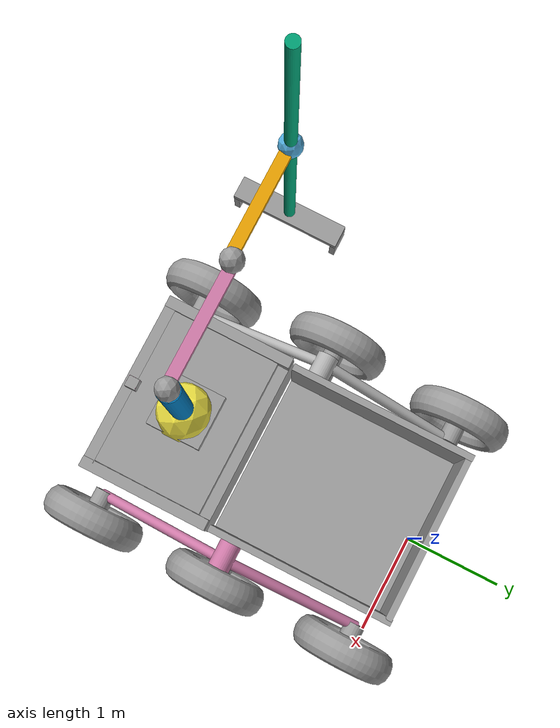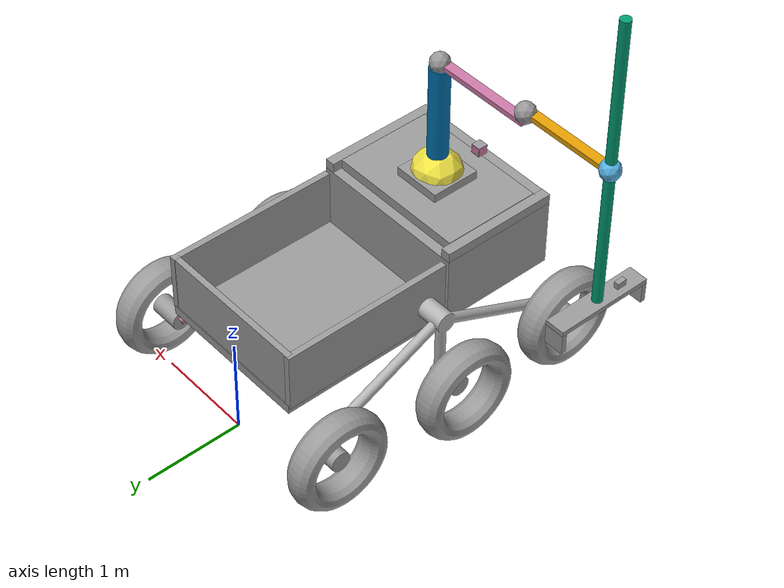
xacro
<?xml version="1.0"?>
<robot xmlns:xacro="http://ros.org/wiki/xacro" name="rover">

  <!-- Includes de componentes -->

  <xacro:include filename="$(find rover_description)/urdf/base/robot_base.urdf.xacro"/>
  <xacro:include filename="$(find rover_description)/urdf/wheels/rover_wheel.urdf.xacro"/>
  <xacro:include filename="$(find rover_description)/urdf/arm/scara.urdf.xacro"/>
  <xacro:include filename="$(find rover_description)/urdf/arm/gripper.urdf.xacro"/>
  <xacro:include filename="$(find rover_description)/urdf/sensors/camera.urdf.xacro"/>
  <xacro:include filename="$(find rover_description)/urdf/sensors/imu_sensor.urdf.xacro"/>

  <!-- Propiedades comunes -->
  <xacro:property name="PI" value="3.1415926535897931"/>

  <!-- Argumentos -->
  <xacro:arg name="robot_ns" default=""/>
  <xacro:arg name="prefix" default=""/>
  <xacro:arg name="config_controllers" default="$(find rover_description)/config/rover_controllers.yaml"/>
  <xacro:arg name="update_rate" default="100"/>

  <!-- Base del robot (debe contener base_footprint -> base_link) -->
  <xacro:robot_base prefix="$(arg prefix)"/>

  <xacro:rover_wheel prefix="$(arg prefix)"/>

  <xacro:arm_scara prefix="$(arg prefix)"/>

  <xacro:arm_gripper prefix="$(arg prefix)"/>

  <xacro:rover_cameras prefix="$(arg prefix)"/>

  <xacro:rover_imu_sensor prefix="$(arg prefix)"/>

  <!-- Gazebo ROS control plugins -->
  <xacro:include filename="$(find rover_description)/urdf/ros2_control.urdf.xacro"/>
  <xacro:arg name="config_controllers" default="$(find rover_description)/config/rover_controllers.yaml"/>
  <xacro:arg name="update_rate" default="20"/>
  <xacro:ros2_control/>

  <!-- Control ROS2 con plugins Gazebo -->

</robot>

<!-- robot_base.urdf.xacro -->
<!-- created with Phobos 1.0.1 "Capricious Choutengan" -->
<robot xmlns:xacro="http://wiki.ros.org/xacro">

    <xacro:macro name="robot_base" params="prefix">

        <xacro:property name="PI" value="3.1415926535897931"/>

        <!-- base_footprint is the root link -->
        <link name="base_footprint">
            <origin rpy="0.00000 0.00000 0.00000" xyz="0 0 0"/>
        </link>

        <link name="base_link">

            <collision name="center_collision">
                <origin rpy="0.00000 0.00000 0.00000" xyz="0.00036 -0.48747 0.03518"/>
                <geometry>
                <box size="1.66000 1.20000 0.69949"/>
                </geometry>
            </collision>

            <inertial>
                <mass value="20.00000"/>
                <inertia
                ixx="5.38119" ixy="0.00000" ixz="-0.00000"
                iyy="3.21104" iyz="-0.00000"
                izz="6.96127"/>
            </inertial>

            <visual name="center">
                <origin rpy="0.00000 0.00000 0.00000" xyz="0.00036 -0.48747 0.03518"/>
                <geometry>
                    <box size="1.66 1.2 0.699491"/>
                </geometry>
                <material name="gray">
                    <color rgba="0.6 0.6 0.6 1.0"/>
                </material>
            </visual>
        </link>

        <joint name="Center_joint" type="fixed">
            <origin rpy="0 0 0" xyz="0.00245 -1.84494 1.1379"/>
            <parent link="base_footprint"/>
            <child link="base_link"/>
        </joint>

        <link name="base_arm_link">
            <collision name="base_arm_collision">
                <origin rpy="0.00000 0.00000 0.00000" xyz="0.00000 0 0.00000"/>
                <geometry>
                <box size="0.50000 0.50000 0.10000"/>
                </geometry>
            </collision>

            <inertial>
                <inertia ixx="0.10833" ixy="0.00000" ixz="0.00000" iyy="0.10833" iyz="0.00000" izz="0.20833"/>
                <origin rpy="0.00000 0.00000 0.00000" xyz="0.00000 0 0.00000"/>
                <mass value="5.00000"/>
            </inertial>
            <visual name="base_arm">
                <origin rpy="0.00000 0.00000 0.00000" xyz="0.00000 0 0.00000"/>
                <geometry>
                    <box size="0.50000 0.50000 0.10000"/>
                </geometry>
                <material name="gray">
                    <color rgba="0.6 0.6 0.6 1.0"/>
                </material>
            </visual>
        </link>

        <joint name="base_arm_link_joint" type="fixed">
            <origin rpy="0.00000 0.00000 1.57080" xyz="-0.00036 -0.48747 0.52328"/>
            <parent link="base_link"/>
            <child link="base_arm_link"/>
        </joint>

        <link name="box_base_link">
            <collision name="base_car_collision">
                <origin rpy="0 0 0" xyz="0 0 0"/>
                <geometry>
                <box size="1.75000 1.60000 0.09330"/>
                </geometry>
            </collision>

            <inertial>
                <mass value="20.00000"/>
                <inertia
                ixx="5.38119" ixy="0.00000" ixz="-0.00000"
                iyy="3.21104" iyz="-0.00000"
                izz="6.96127"/>
            </inertial>

            <visual name="base_car">
                <origin rpy="0 0 0" xyz="0 0 0"/>
                <geometry>
                    <box size="1.75000 1.60000 0.09330"/>
                </geometry>
                <material name="gray">
                    <color rgba="0.6 0.6 0.6 1.0"/>
                </material>
            </visual>

        </link>

        <joint name="box_base_link_joint" type="fixed">
            <origin rpy="0 0 1.57080" xyz="0.00582 1.00896 -0.26423"/>
            <parent link="base_link"/>
            <child link="box_base_link"/>
        </joint>

        <link name="left_arm_link">
            <collision name="base_car_collision">
                <origin rpy="0 0 0" xyz="0 0 0"/>
                <geometry>
                <mesh filename="package://rover_description/meshes/dae/Cube.018.dae" scale="0.82756 0.05994 0.30311"/>
                </geometry>
            </collision>

            <inertial>
                <mass value="20.00000"/>
                <inertia
                ixx="0.23899" ixy="0.00049" ixz="0.00162"
                iyy="1.25923" iyz="-0.02509"
                izz="1.06138"/>
            </inertial>

            <visual name="left_arm">
                <origin rpy="0 0 0" xyz="0 0 0"/>
                <material name="Material"/>
                <geometry>
                    <mesh filename="package://rover_description/meshes/dae/Cube.018.dae" scale="0.82756 0.05994 0.30311"/>
                </geometry>
            </visual>

        </link>

        <joint name="left_arm_link_joint" type="fixed">
            <origin rpy="0.00000 0.00000 0" xyz="0.97102 0.35887 -0.24256"/>
            <parent link="base_link"/>
            <child link="left_arm_link"/>
        </joint>

        <link name="right_arm_link">
            <collision name="base_car_collision">
                <origin rpy="0 0 0" xyz="0 0 0"/>
                <geometry>
                <mesh filename="package://rover_description/meshes/dae/Cube.015.dae" scale="0.82756 0.05994 0.30311"/>
                </geometry>
            </collision>

            <inertial>
                <mass value="20.00000"/>
                <inertia
                ixx="0.23899" ixy="0.00049" ixz="0.00162"
                iyy="1.25923" iyz="-0.02509"
                izz="1.06138"/>
            </inertial>

            <visual name="right_arm">
                <material name="Material"/>
                <geometry>
                    <mesh filename="package://rover_description/meshes/dae/Cube.015.dae" scale="0.82756 0.05994 0.30311"/>
                </geometry>
            </visual>

        </link>

        <joint name="right_arm_link_joint" type="fixed">
            <origin rpy="0.00000 0.00000 0" xyz="-0.97592 0.35887 -0.24255"/>
            <parent link="base_link"/>
            <child link="right_arm_link"/>
        </joint>

        <xacro:macro name="box_wall_link" params="name size_x size_y size_z mass">

            <link name="${name}_link">
                <visual>
                    <origin rpy="0 0 0" xyz="0 0 0"/>
                    <geometry>
                        <box size="${size_x} ${size_y} ${size_z}"/>
                    </geometry>
                    <material name="gray">
                        <color rgba="0.6 0.6 0.6 1.0"/>
                    </material>
                </visual>

                <collision>
                    <origin rpy="0 0 0" xyz="0 0 0"/>
                    <geometry>
                        <box size="${size_x} ${size_y} ${size_z}"/>
                    </geometry>
                </collision>

                <inertial>
                    <mass value="${mass}"/>
                    <origin xyz="0 0 0" rpy="0 0 0"/>
                    <inertia
                        ixx="${(mass*(size_y*size_y+size_z*size_z))/12}" ixy="0.0"  ixz="0.0"
                        iyy="${(mass*(size_x*size_x+size_z*size_z))/12}" iyz="0.0"
                        izz="${(mass*(size_x*size_x+size_y*size_y))/12}"/>
                </inertial>
            </link>
        </xacro:macro>

        <xacro:macro name="box_wall_link_joint" params="name xyz rpy parent_link">
        <joint name="${name}_link_joint" type="fixed">
            <origin rpy="${rpy}" xyz="${xyz}"/>
            <parent link="${parent_link}"/>
            <child link="${name}_link"/>
        </joint>
        </xacro:macro>

        <xacro:box_wall_link name="left_wall" size_x="0.06207" size_y="1.750000" size_z="0.60000" mass="20.00000"/>
        <xacro:box_wall_link_joint name="left_wall" xyz="0.78876 1.00572 0.06207" rpy="0 0 0" parent_link="base_link"/>

        <xacro:box_wall_link name="right_wall" size_x="0.06207" size_y="1.750000" size_z="0.60000" mass="20.00000"/>
        <xacro:box_wall_link_joint name="right_wall" xyz="-0.78413 1.00572 0.06207" rpy="0 0 0" parent_link="base_link"/>

        <xacro:box_wall_link name="back_wall" size_x="1.56700" size_y="0.06207" size_z="0.60000" mass="20.00000"/>
        <xacro:box_wall_link_joint name="back_wall" xyz="-0.00245 1.84494 0.06207" rpy="0 0 0" parent_link="base_link"/>

        <xacro:box_wall_link name="right_cube_head" size_x="0.1" size_y="1.2" size_z="0.1" mass="5.0"/>
        <xacro:box_wall_link_joint name="right_cube_head" xyz="-0.77909 -0.48947 0.43260" rpy="0.00000 0.00000 0.00000" parent_link="base_link"/>

        <xacro:box_wall_link name="front_cube_head" size_x="1.5" size_y="0.1" size_z="0.1" mass="5.0"/>
        <xacro:box_wall_link_joint name="front_cube_head" xyz="0.00594 -1.03621 0.43260" rpy="0.00000 0.00000 0.00000" parent_link="base_link"/>

        <xacro:box_wall_link name="left_cube_head" size_x="0.1" size_y="1.2" size_z="0.1" mass="5.0"/>
        <xacro:box_wall_link_joint name="left_cube_head" xyz="0.77994 -0.48947 0.43260" rpy="0.00000 0.00000 0.00000" parent_link="base_link"/>

        <xacro:box_wall_link name="top_head" size_x="1.45" size_y="1" size_z="0.1" mass="5.0"/>
        <xacro:box_wall_link_joint name="top_head" xyz="0.00036 -0.48747 0.43468" rpy="0.00000 0.00000 0.00000" parent_link="base_link"/>

        <xacro:macro name="cylinder_link" params="name ">

            <link name="${name}_link">
                <visual name="${name}">
                    <origin rpy="1.57080 0.00000 -1.57080" xyz="-0.00000 0.00000 -0.00000"/>
                    <geometry>
                        <cylinder radius="0.1" length="0.3"/>
                    </geometry>
                    <material name="gray">
                        <color rgba="0.6 0.6 0.6 1.0"/>
                    </material>
                </visual>

                <collision>
                    <origin rpy="1.57080 0.00000 -1.57080" xyz="-0.00000 0.00000 -0.00000"/>
                    <geometry>
                        <cylinder radius="0.1" length="0.3"/>
                    </geometry>
                </collision>

                <inertial>
                    <mass value="5"/>
                    <origin xyz="0 0 0" rpy="0 0 0"/>
                    <inertia ixx="0.88021" ixy="0.00000" ixz="0.00000" iyy="0.42083" iyz="0.00000" izz="1.29271"/>
                    <origin rpy="0.00000 0.00000 0.00000" xyz="0 0 0"/>
                    <mass value="5.00000"/>
                </inertial>
            </link>
        </xacro:macro>

        <xacro:macro name="cylinder_link_joint" params="name xyz rpy parent_link">
        <joint name="${name}_link_joint" type="fixed">
            <origin rpy="${rpy}" xyz="${xyz}"/>
            <parent link="${parent_link}"/>
            <child link="${name}_link"/>
        </joint>
        </xacro:macro>

        <xacro:cylinder_link name="front_left_cylinder"/>
        <xacro:cylinder_link_joint name="front_left_cylinder" xyz="1.10695 -0.98106 -0.64880" rpy="0.00000 -0.00000 0.00000" parent_link="base_link"/>

        <xacro:cylinder_link name="left_cylinder"/>
        <xacro:cylinder_link_joint name="left_cylinder" xyz="1.12188 0.34836 -0.64379" rpy="0.00000 -0.00000 0.00000" parent_link="base_link"/>

        <xacro:cylinder_link name="back_left_cylinder"/>
        <xacro:cylinder_link_joint name="back_left_cylinder" xyz="1.12188 1.71195 -0.64379" rpy="0.00000 -0.00000 0.00000" parent_link="base_link"/>

        <xacro:cylinder_link name="front_right_cylinder"/>
        <xacro:cylinder_link_joint name="front_right_cylinder" xyz="-1.11185 -0.98720 -0.64880" rpy="0.00000 -0.00000 0.00000" parent_link="base_link"/>

        <xacro:cylinder_link name="right_cylinder"/>
        <xacro:cylinder_link_joint name="right_cylinder" xyz="-1.12678 0.34836 -0.64379" rpy="0.00000 -0.00000 0.00000" parent_link="base_link"/>

        <xacro:cylinder_link name="back_right_cylinder"/>
        <xacro:cylinder_link_joint name="back_right_cylinder" xyz="-1.12678 1.71195 -0.64379" rpy="0.00000 -0.00000 0.00000" parent_link="base_link"/>

    </xacro:macro>

</robot>

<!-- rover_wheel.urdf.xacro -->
<robot xmlns:xacro="http://wiki.ros.org/xacro">

  <xacro:property name="PI" value="3.1415926535897931"/>

  <!-- Macro para una rueda -->
  <xacro:macro name="wheel_link" params="name">
    <link name="${name}_link">
      <visual>
        <origin xyz="0 0 0" rpy="0 1.5708 0"/>
        <geometry>
          <mesh filename="package://rover_description/meshes/dae/Torus.002.dae" scale="0.4 0.4 0.6"/>
        </geometry>
        <material name="gray">
          <color rgba="0.6 0.6 0.6 1.0"/>
        </material>
      </visual>
      <collision>
        <origin xyz="0 0 0" rpy="0 1.5708 0"/>
        <geometry>
          <mesh filename="package://rover_description/meshes/dae/Torus.002.dae" scale="0.4 0.4 0.6"/>
        </geometry>
        <surface>
        <friction>
          <ode>
            <mu>1.000000</mu>
            <mu2>1.000000</mu2>
            <fdir1>0.000000 0.000000 1.000000</fdir1>
            <slip1>0.500000</slip1>
            <slip2>0.500000</slip2>
          </ode>
        </friction>
      </surface>

      </collision>
      <inertial>
        <mass value="5"/>
        <origin xyz="0 0 0" rpy="0 0 0"/>
        <inertia ixx="0.31539" ixy="0.0" ixz="0.0"
                 iyy="0.58648" iyz="0.0"
                 izz="0.31539"/>
      </inertial>
    </link>
  </xacro:macro>

  <!-- Macro para el joint de una rueda -->
  <xacro:macro name="wheel_link_joint" params="name xyz rpy parent_link">
    <joint name="${name}_joint" type="continuous">
      <origin xyz="${xyz}" rpy="${rpy}"/>
      <limit effort="5000" velocity="100"/>
      <dynamics damping="0.05" friction="0.1"/>
      <parent link="${parent_link}"/>
      <child link="${name}_link"/>
    </joint>
  </xacro:macro>

  <xacro:macro name="wheel_transmission" params="prefix">
    <transmission name="${prefix}_wheel_joint_trans">
      <type>transmission_interface/SimpleTransmission</type>
      <joint name="${prefix}_wheel_joint">
        <hardwareInterface>hardware_interface/VelocityJointInterface</hardwareInterface>
      </joint>
      <actuator name="${prefix}_wheel_joint_motor">
        <mechanicalReduction>1</mechanicalReduction>
      </actuator>
    </transmission>
  </xacro:macro>

  <xacro:macro name="wheel_gazebo" params="prefix">
    <gazebo reference="${prefix}_wheel_link">
      <mu1>5</mu1>
      <mu2>5</mu2>
    </gazebo>
  </xacro:macro>

  <!-- Macro principal para añadir todas las ruedas -->
  <xacro:macro name="rover_wheel" params="prefix">

    <!-- Ruedas delanteras -->
    <xacro:wheel_link name="${prefix}left_front_wheel"/>
    <xacro:wheel_link_joint name="${prefix}left_front_wheel" xyz="1.23688 -0.96147 -0.64379" rpy="0.00000 -0.00000 0.00000" parent_link="base_link"/>
    <xacro:wheel_transmission prefix="${prefix}left_front"/>
    <xacro:wheel_gazebo prefix="${prefix}left_front"/>

    <xacro:wheel_link name="${prefix}right_front_wheel"/>
    <xacro:wheel_link_joint name="${prefix}right_front_wheel" xyz="-1.23028 -0.96147 -0.64379" rpy="0.00000 -0.00000 ${PI}" parent_link="base_link"/>
    <xacro:wheel_transmission prefix="${prefix}right_front"/>
    <xacro:wheel_gazebo prefix="${prefix}right_front"/>

    <!-- Ruedas del medio -->
    <xacro:wheel_link name="${prefix}left_wheel"/>
    <xacro:wheel_link_joint name="${prefix}left_wheel" xyz="1.23688 0.34836 -0.64379" rpy="0.00000 -0.00000 0.00000" parent_link="base_link"/>
    <xacro:wheel_transmission prefix="${prefix}left"/>
    <xacro:wheel_gazebo prefix="${prefix}left"/>

    <xacro:wheel_link name="${prefix}right_wheel"/>
    <xacro:wheel_link_joint name="${prefix}right_wheel" xyz="-1.32480 0.34836 -0.64379" rpy="0.00000 -0.00000 ${PI}" parent_link="base_link"/>
    <xacro:wheel_transmission prefix="${prefix}right"/>
    <xacro:wheel_gazebo prefix="${prefix}right"/>

    <!-- Ruedas traseras -->
    <xacro:wheel_link name="${prefix}left_back_wheel"/>
    <xacro:wheel_link_joint name="${prefix}left_back_wheel" xyz="1.23688 1.71195 -0.64379" rpy="0.00000 -0.00000 0.00000" parent_link="base_link"/>
    <xacro:wheel_transmission prefix="${prefix}left_back"/>
    <xacro:wheel_gazebo prefix="${prefix}left_back"/>

    <xacro:wheel_link name="${prefix}right_back_wheel"/>
    <xacro:wheel_link_joint name="${prefix}right_back_wheel" xyz="-1.23028 1.71195 -0.64379" rpy="0.00000 -0.00000 ${PI}" parent_link="base_link"/>
    <xacro:wheel_transmission prefix="${prefix}right_back"/>
    <xacro:wheel_gazebo prefix="${prefix}right_back"/>

  </xacro:macro>

</robot>

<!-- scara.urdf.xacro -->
<robot xmlns:xacro="http://wiki.ros.org/xacro">

  <xacro:property name="PI" value="3.1415926535897931"/>

  <xacro:macro name="arm_scara" params="prefix">

    <link name="aa_base_arm_iIcosphere_link">
        <collision name="aa_base_arm_iIcosphere_collision">
            <origin rpy="0.00000 0.00000 -0.00000" xyz="-0.00000 -0.14253 -0.16660"/>
            <geometry>
              <mesh filename="package://rover_description/meshes/dae/Icosphere.dae" scale="0.26287 0.25000 0.25000"/>
            </geometry>
        </collision>

        <inertial>
          <inertia ixx="0.22862" ixy="0.00000" ixz="0.00000" iyy="0.24069" iyz="0.00000" izz="0.24069"/>
          <origin rpy="0.00000 0.00000 0.00000" xyz="-0.00000 -0.14253 -0.16660"/>
          <mass value="10.00000"/>
        </inertial>

        <visual name="aa_base_arm_iIcosphere">
          <origin rpy="0.00000 0.00000 -0.00000" xyz="-0.00000 -0.14253 -0.16660"/>
          <geometry>
            <mesh filename="package://rover_description/meshes/dae/Icosphere.dae" scale="0.26287 0.25000 0.25000"/>
          </geometry>
        </visual>

    </link>

    <joint name="aa_base_arm_iIcosphere_link_joint" type="fixed">
        <origin rpy="0 0 0" xyz="0.01357 -0.35747 0.68988"/>
        <parent link="base_link"/>
        <child link="aa_base_arm_iIcosphere_link"/>
    </joint>

    <link name="arm1_fixed_link">
        <collision name="arm1_fixed_collision">
            <origin rpy="1.57080 0.00000 0.00000" xyz="0.00000 0.00000 -0.07682"/>
            <geometry>
              <cylinder radius="0.1" length="1.0"/>
            </geometry>
        </collision>

        <inertial>
          <inertia ixx="0.42917" ixy="-0.00000" ixz="0.00000" iyy="0.42917" iyz="-0.00000" izz="0.02500"/>
          <origin rpy="0.00000 0.00000 0.00000" xyz="0.00000 -0.00000 -0.07682"/>
          <mass value="5.00000"/>
        </inertial>
         <visual name="arm1_fixed">
          <origin rpy="1.57080 0.00000 0.00000" xyz="0.00000 0.00000 -0.07682"/>
          <material name="Material.007"/>
          <geometry>
            <cylinder radius="0.10000" length="1.00000"/>
          </geometry>
        </visual>

    </link>

    <joint name="arm1_fixed_link_joint" type="fixed">
        <origin rpy="-1.57080 0.00000 0.00000" xyz="-0.00000 -0.06571 0.52174"/>
        <parent link="aa_base_arm_iIcosphere_link"/>
        <child link="arm1_fixed_link"/>
    </joint>

  <xacro:macro name="arm_sphere_link" params="name rpy xyz">
    <link name="${name}_link">
      <collision name="Icosphere.001_collision">
        <origin rpy="${rpy}" xyz="${xyz}"/>
        <geometry>
          <mesh filename="package://rover_description/meshes/dae/Icosphere.001.dae" scale="0.10515 0.10000 0.10000"/>
        </geometry>
      </collision>
      <visual>
        <origin rpy="${rpy}" xyz="${xyz}"/>
        <geometry>
          <mesh filename="package://rover_description/meshes/dae/Icosphere.001.dae" scale="0.10515 0.10000 0.10000"/>
        </geometry>
        <material name="gray">
          <color rgba="0.6 0.6 0.6 1.0"/>
        </material>
      </visual>
     <inertial>
      <inertia ixx="0.00366" ixy="0.00000" ixz="0.00000" iyy="0.00385" iyz="0.00000" izz="0.00385"/>
      <origin rpy="0.00000 0.00000 0.00000" xyz="-0.00000 -0.00000 -0.04529"/>
      <mass value="1.00000"/>
    </inertial>
    </link>
  </xacro:macro>

  <xacro:macro name="arm_sphere_link_joint" params="name xyz rpy parent_link low up ef vel">
    <joint name="${name}_link_joint" type="revolute">
      <origin xyz="${xyz}" rpy="${rpy}"/>
      <parent link="${parent_link}"/>
      <child link="${name}_link"/>
      <limit lower="${low}" upper="${up}" effort="${ef}" velocity="${vel}"/>
    </joint>
  </xacro:macro>

  <xacro:macro name="box_arm_link" params="name size_x size_y size_z mass">

            <link name="${name}_link">
                <visual>
                    <origin rpy="${PI/2} 0 ${PI/2}" xyz="0 0 0"/>
                    <geometry>
                        <box size="${size_x} ${size_y} ${size_z}"/>
                    </geometry>
                    <material name="Material.007"/>
                </visual>

                <collision>
                    <origin rpy="${PI/2} 0 ${PI/2}" xyz="0 0 0"/>
                    <geometry>
                        <box size="${size_x} ${size_y} ${size_z}"/>
                    </geometry>
                </collision>

                <inertial>
                  <mass value="${mass}"/>
                  <origin xyz="0 0 0" rpy="0 0 0"/>
                  <inertia ixx="0.00104" ixy="0.00000" ixz="0.00000" iyy="0.08354" iyz="0.00000" izz="0.08417"/>
                </inertial>
            </link>
        </xacro:macro>

        <xacro:macro name="box_arm_link_joint" params="name xyz rpy parent_link">
        <joint name="${name}_link_joint" type="fixed">
            <origin rpy="${rpy}" xyz="${xyz}"/>
            <parent link="${parent_link}"/>
            <child link="${name}_link"/>
        </joint>
        </xacro:macro>

        <xacro:arm_sphere_link name="arm_sphere_1" rpy="0 0 0" xyz="0.00000 -0.00000 -0"/>
        <xacro:arm_sphere_link_joint name="arm_sphere_1" xyz="0.00000 -0.54529 -0.07682" rpy="0 0.00000 ${-PI/2}" parent_link="arm1_fixed_link" up="3.14000" low="-3.14000" ef="1000.00000" vel="100.00000"/>

        <xacro:box_arm_link name="arm1" size_x="1" size_y="0.1" size_z="0.05" mass="1"/>
        <xacro:box_arm_link_joint name="arm1" xyz="0 -0.54824 -0.01015" rpy="0 0 0" parent_link="arm_sphere_1_link"/>

        <xacro:arm_sphere_link name="arm_sphere_2" rpy="0 0 0" xyz="0.00000 0.00000 -0"/>
        <xacro:arm_sphere_link_joint name="arm_sphere_2" xyz="0.09619 -0.49232 0" rpy="0.00000 0.00000 0.00000" parent_link="arm1_link" up="2.50000" low="-2.50000" ef="1000.00000" vel="100.00000"/>

        <xacro:box_arm_link name="arm2" size_x="1" size_y="0.1" size_z="0.05" mass="1"/>
        <xacro:box_arm_link_joint name="arm2" xyz="0 -0.53697 -0.02327" rpy="0 0 0" parent_link="arm_sphere_2_link"/>

        <link name="arm_sphere_3_link">
          <collision name="arm_sphere_3_collision">
              <origin rpy="0.00000 0.00000 0.00000" xyz="-0.00000 -0.00000 -0.08417"/>
              <geometry>
                <mesh filename="package://rover_description/meshes/dae/Icosphere.dae" scale="0.10515 0.10000 0.10000"/>
              </geometry>
          </collision>

          <inertial>
            <inertia ixx="0.22862" ixy="0.00000" ixz="0.00000" iyy="0.24069" iyz="0.00000" izz="0.24069"/>
            <origin rpy="0.00000 0.00000 0.00000" xyz="-0.00000 -0.14253 -0.16660"/>
            <mass value="10.00000"/>
          </inertial>

          <visual name="arm_sphere_3">
            <origin rpy="0.00000 0.00000 0.00000" xyz="-0.00000 -0.00000 -0.08417"/>
            <geometry>
              <mesh filename="package://rover_description/meshes/dae/Icosphere.dae" scale="0.10515 0.10000 0.10000"/>
            </geometry>
          </visual>

      </link>

      <joint name="arm_sphere_3_link_joint" type="fixed">
        <origin rpy="0 0 0" xyz="0 -0.42599 0.08690"/>
        <parent link="arm2_link"/>
        <child link="arm_sphere_3_link"/>
    </joint>

    <link name="extension_cylinder_link">
        <collision name="extension_cylinder_collision">
            <origin rpy="0.00000 ${PI/2} -0.00000" xyz="0.00000 0.00000 0.00000"/>
            <geometry>
              <cylinder radius="0.05000" length="3"/>
            </geometry>
        </collision>

        <inertial>
          <inertia ixx="3.75313" ixy="0.00000" ixz="0.00000" iyy="3.75313" iyz="-0.00000" izz="0.00625"/>
          <origin rpy="0.00000 0.00000 0.00000" xyz="0.00000 0.00000 0.00000"/>
          <mass value="5.00000"/>
        </inertial>
        <visual name="extension_cylinder">
          <origin rpy="0.00000 ${PI/2} -0.00000" xyz="0.00000 0.00000 0.00000"/>
          <material name="Material.007"/>
          <geometry>
            <cylinder radius="0.05000" length="3.00000"/>
          </geometry>
        </visual>

    </link>

    <joint name="extension_cylinder_link_joint" type="prismatic">
        <origin rpy="0.00000 0.00000 0.00000" xyz="-0.00000 -0.00000 -0.08417"/>
        <parent link="arm_sphere_3_link"/>
        <child link="extension_cylinder_link"/>
        <limit lower="-1.20000" upper="1.20000" effort="1000.00000" velocity="100.00000"/>
    </joint>

  </xacro:macro>

</robot>

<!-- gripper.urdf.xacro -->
<robot xmlns:xacro="http://wiki.ros.org/xacro">

  <xacro:property name="PI" value="3.1415926535897931"/>

  <xacro:macro name="arm_gripper" params="prefix">

    <link name="base_gripper_link">
            <collision name="base_gripper_collision">
                <origin rpy="${PI/2} 0 ${PI/2}" xyz="0 0.00000 0"/>
                <geometry>
                <box size="0.20000 1.00000 0.05000"/>
                </geometry>
            </collision>

            <inertial>
                <mass value="20.00000"/>
                <inertia
                ixx="5.38119" ixy="0.00000" ixz="-0.00000"
                iyy="3.21104" iyz="-0.00000"
                izz="6.96127"/>
            </inertial>

            <visual name="base_gripper">
                <origin rpy="${PI/2} 0 ${PI/2}" xyz="0 0.00000 0"/>
                <geometry>
                    <box size="0.20000 1.00000 0.05000"/>
                </geometry>
                <material name="gray">
                    <color rgba="0.6 0.6 0.6 1.0"/>
                </material>
            </visual>

        </link>

        <joint name="base_gripper_link_joint" type="revolute">
            <origin rpy="0 0 0" xyz="-1.47674 0.00000 0"/>
            <parent link="extension_cylinder_link"/>
            <child link="base_gripper_link"/>
            <limit lower="-3.14000" upper="3.14000" effort="1000.00000" velocity="100.00000"/>
        </joint>

        <xacro:macro name="gripper_hand_link" params="name size_x size_y size_z mass">

            <link name="${name}_link">
                <visual>
                    <origin xyz="0 0 0" rpy="0 0 ${PI/2}"/>
                    <geometry>
                        <box size="${size_x} ${size_y} ${size_z}"/>
                    </geometry>
                    <material name="gray">
                        <color rgba="0.6 0.6 0.6 1.0"/>
                    </material>
                </visual>

                <collision>
                     <origin xyz="0 0 0" rpy="0 0 ${PI/2}"/>
                    <geometry>
                        <box size="${size_x} ${size_y} ${size_z}"/>
                    </geometry>
                </collision>

                <inertial>
                    <mass value="${mass}"/>
                    <origin xyz="0 0 0" rpy="0 0 0"/>
                    <inertia
                        ixx="${(mass*(size_y*size_y+size_z*size_z))/12}" ixy="0.0"  ixz="0.0"
                        iyy="${(mass*(size_x*size_x+size_z*size_z))/12}" iyz="0.0"
                        izz="${(mass*(size_x*size_x+size_y*size_y))/12}"/>
                </inertial>
            </link>
        </xacro:macro>

        <xacro:macro name="gripper_hand_link_joint" params="name xyz rpy parent_link up">
        <joint name="${name}_link_joint" type="prismatic">
            <origin rpy="${rpy}" xyz="${xyz}"/>
            <parent link="${parent_link}"/>
            <child link="${name}_link"/>
            <limit lower="0.00000" upper="${up}" effort="1000.00000" velocity="100.00000"/>
        </joint>
        </xacro:macro>

        <xacro:gripper_hand_link name="right_hand" size_x="0.20000" size_y="0.05000" size_z="0.20000" mass="1.00000"/>
        <xacro:gripper_hand_link_joint name="right_hand" xyz="-0.12522 0.00000 0.47551" rpy="0 ${PI/2} 0" parent_link="base_gripper_link" up="0.50000"/>

        <xacro:gripper_hand_link name="left_hand" size_x="0.20000" size_y="0.05000" size_z="0.20000" mass="1.00000"/>
        <xacro:gripper_hand_link_joint name="left_hand" xyz="-0.12522 0.00000 -0.47551" rpy="0 ${-PI/2} 0" parent_link="base_gripper_link" up="0.50000"/>

  </xacro:macro>

</robot>

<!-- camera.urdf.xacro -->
<robot xmlns:xacro="http://wiki.ros.org/xacro">

  <xacro:property name="PI" value="3.1415926535897931"/>

  <link name="camera_base_link">

        <visual name="base_cam_front">
            <origin rpy="0 0 0" xyz="0 0 0"/>
            <geometry>
                <box size="0.1 0.1 0.1"/>
            </geometry>
            <material name="gray">
                <color rgba="0.6 0.6 0.6 1.0"/>
            </material>
        </visual>

    </link>

    <joint name="camera_base_link_joint" type="fixed">
        <origin rpy="0 ${-PI/2} ${-PI/2}" xyz="0.00019 -1.0 0.52922"/> <!--rpy="0 0 ${-PI/2}"-->
        <parent link="base_link"/>
        <child link="camera_base_link"/>
    </joint>

    <link name="camera_gripper_base_link">

        <visual name="base_cam_front">
            <origin rpy="0 0 0" xyz="0 0 0"/>
            <geometry>
                <box size="0.1 0.1 0.05"/>
            </geometry>
            <material name="gray">
                <color rgba="0.6 0.6 0.6 1.0"/>
            </material>
        </visual>

    </link>

    <joint name="camera_gripper_base_link_joint" type="fixed">
        <origin rpy="${-PI/2} 0 ${-2*PI/2}" xyz="0.03822 -0.00782 -0.26448"/>
        <parent link="base_gripper_link"/>
        <child link="camera_gripper_base_link"/>
    </joint>

  <xacro:macro name="camera_link" params="name size_x size_y size_z mass">

            <link name="${name}_link">
                <visual>
                    <geometry>
                        <box size="${size_x} ${size_y} ${size_z}"/>
                    </geometry>
                    <material name="Material.002"/>
                </visual>

                <collision>
                    <geometry>
                        <box size="${size_x} ${size_y} ${size_z}"/>
                    </geometry>
                </collision>

                <inertial>
                    <mass value="${mass}"/>
                    <origin xyz="0 0 0" rpy="0 0 0"/>
                    <inertia
                        ixx="${(mass*(size_y*size_y+size_z*size_z))/12}" ixy="0.0"  ixz="0.0"
                        iyy="${(mass*(size_x*size_x+size_z*size_z))/12}" iyz="0.0"
                        izz="${(mass*(size_x*size_x+size_y*size_y))/12}"/>
                </inertial>
            </link>
        </xacro:macro>

        <xacro:macro name="camera_link_joint" params="name xyz rpy parent_link">
        <joint name="${name}_link_joint" type="fixed">
            <origin rpy="${rpy}" xyz="${xyz}"/>
            <parent link="${parent_link}"/>
            <child link="${name}_link"/>
        </joint>
        </xacro:macro>

  <xacro:macro name="rover_cameras" params="prefix">

    <xacro:camera_link name="front_camera" size_x="0.1" size_y="0.1" size_z="0.1" mass="1"/>
    <xacro:camera_link_joint name="front_camera" xyz="0 0 0" rpy="0 ${PI/2} 0" parent_link="camera_base_link"/>

    <gazebo reference="${prefix}front_camera_link">
        <sensor name="${prefix}front_camera_sensor" type="camera">
            <visualize>true</visualize>
            <update_rate>30</update_rate>
            <topic>/front_camera/image</topic>
            <camera>
                <horizontal_fov>1.3962634</horizontal_fov> <!-- ejemplo de 80 grados en radianes -->
                <image>
                    <width>640</width>
                    <height>480</height>
                    <format>R8G8B8</format>
                </image>
                <clip>
                    <near>0.1</near>
                    <far>15.0</far>
                </clip>
                <noise>
                    <type>gaussian</type>
                    <mean>0.0</mean>
                    <stddev>0.007</stddev>
                </noise>
                <optical_frame_id>${prefix}base_link</optical_frame_id>
            </camera>
        </sensor>
    </gazebo>

    <xacro:camera_link name="gripper_camera" size_x="0.1" size_y="0.1" size_z="0.05" mass="1"/>
    <xacro:camera_link_joint name="gripper_camera" xyz="0 0 0" rpy="0 ${4*PI/2} ${4*PI/2}" parent_link="camera_gripper_base_link"/>

    <gazebo reference="${prefix}gripper_camera_link">
        <sensor name="${prefix}gripper_camera_sensor" type="camera">
            <visualize>true</visualize>
            <update_rate>30</update_rate>
            <topic>/arm_camera/image</topic>
            <camera>
            <horizontal_fov>1.3962634</horizontal_fov>
            <image>
                <width>640</width>
                <height>480</height>
                <format>R8G8B8</format>
            </image>
            <clip>
                <near>0.1</near>
                <far>15.0</far>
            </clip>
            <noise>
                <type>gaussian</type>
                <mean>0.0</mean>
                <stddev>0.007</stddev>
            </noise>
            <optical_frame_id>${prefix}gripper_base_link</optical_frame_id>
            </camera>
        </sensor>
    </gazebo>

  </xacro:macro>

</robot>

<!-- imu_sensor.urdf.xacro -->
<robot xmlns:xacro="http://wiki.ros.org/xacro">

  <xacro:property name="PI" value="3.1415926535897931"/>

  <xacro:macro name="rover_imu_sensor" params="prefix">

     <link name="sensor_IMU_link">
            <inertial>
                <mass value="1.00000"/>
                <inertia
                ixx="0.23899" ixy="0.00049" ixz="0.00162"
                iyy="1.25923" iyz="-0.02509"
                izz="1.06138"/>
            </inertial>

            <visual name="sensor_IMU">
                <material name="Material"/>
                <geometry>
                    <box size="0.01 0.01 0.01"/>
                </geometry>
            </visual>

        </link>

        <joint name="sensor_IMU_link_joint" type="fixed">
            <origin rpy="0.00000 0.00000 0" xyz="0 0 0"/>
            <parent link="base_link"/>
            <child link="sensor_IMU_link"/>
        </joint>

        <gazebo reference="${prefix}sensor_IMU_link">
            <sensor name="${prefix}sensor_IMU" type="imu">
                <always_on>1</always_on>
                <update_rate>30</update_rate>
                <topic>/${prefix}imu/data</topic>
            </sensor>
        </gazebo>

  </xacro:macro>

</robot>
